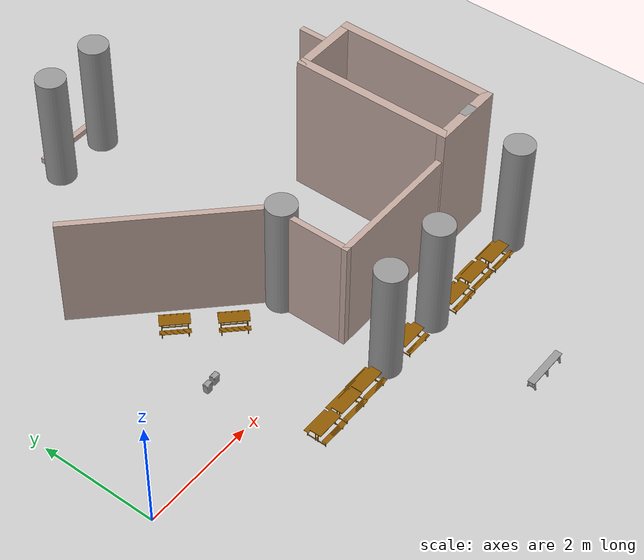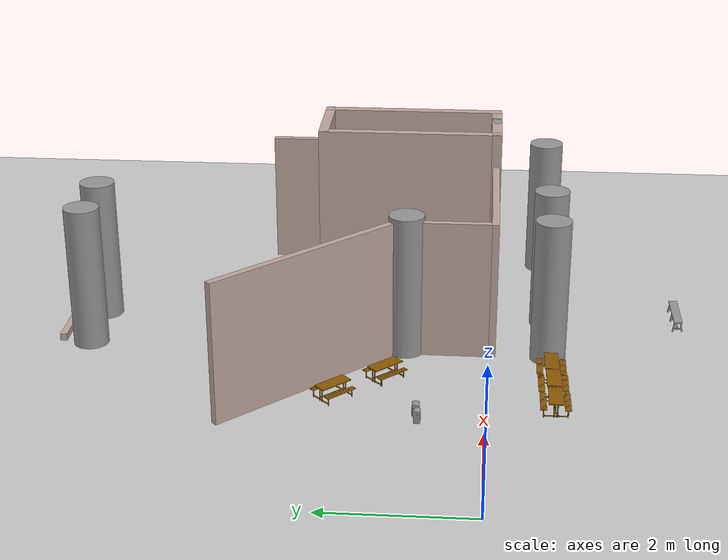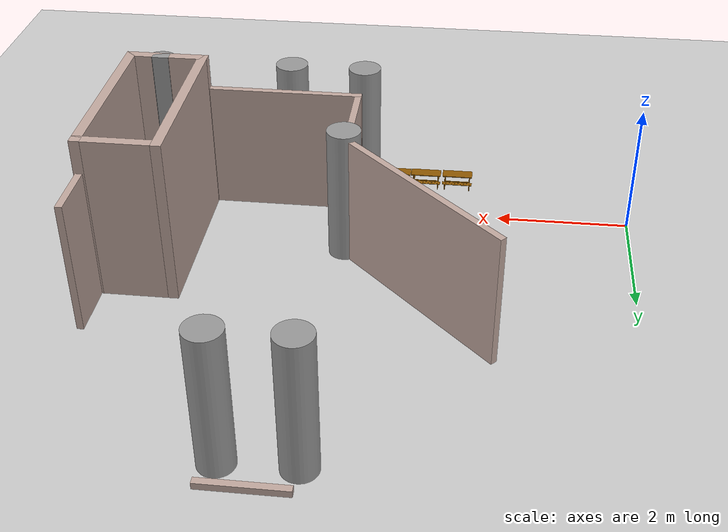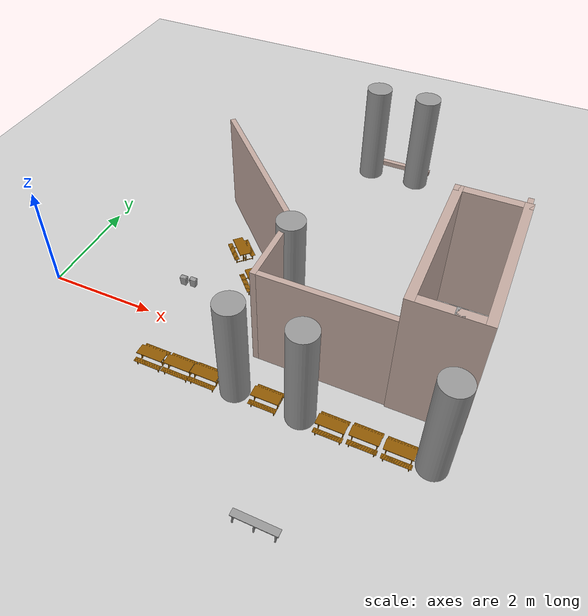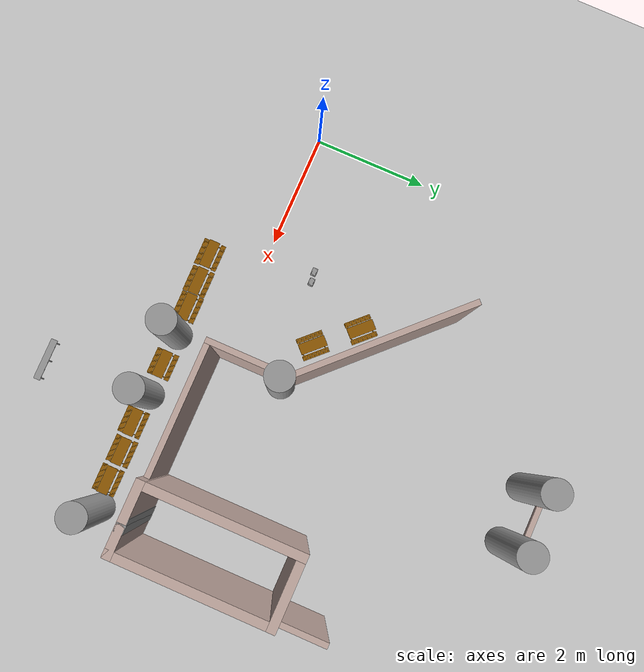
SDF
<sdf version="1.6">
 <world name="default">
  <model name="ground_plane">
   <static>1</static>
   <link name="link">
    <collision name="collision">
     <geometry><plane><normal>0 0 1</normal><size>100 100</size></plane></geometry>
     <surface>
      <contact><collide_bitmask>65535</collide_bitmask></contact>
      <friction><ode><mu>100</mu><mu2>50</mu2></ode></friction>
     </surface>
    </collision>
    <visual name="visual">
     <cast_shadows>0</cast_shadows>
     <geometry><plane><normal>0 0 1</normal><size>100 100</size></plane></geometry>
     <material>
      <script><uri>file://media/materials/scripts/gazebo.material</uri><name>Gazebo/Grey</name></script>
     </material>
    </visual>
   </link>
  </model>
  <model name="gedung_p">
   <pose>2.96636 -2.09069 0 0 -0 0</pose>
   <link name="Wall_137">
    <collision name="Wall_137_Collision">
     <geometry><box><size>3.20031 0.1 2</size></box></geometry>
     <pose>0 0 1 0 -0 0</pose>
    </collision>
    <visual name="Wall_137_Visual">
     <pose>0 0 1 0 -0 0</pose>
     <geometry><box><size>3.20031 0.1 2</size></box></geometry>
     <material>
      <script><uri>file://media/materials/scripts/gazebo.material</uri><name>Gazebo/Grey</name></script>
      <ambient>0.760784 0.662745 0.627451 1</ambient>
     </material>
     <meta><layer>0</layer></meta>
    </visual>
    <pose>0.152488 4.4448 0 0 -0 -0.785398</pose>
   </link>
   <link name="Wall_138">
    <collision name="Wall_138_Collision">
     <geometry><box><size>1.45007 0.1 2</size></box></geometry>
     <pose>0 0 1 0 -0 0</pose>
    </collision>
    <visual name="Wall_138_Visual">
     <pose>0 0 1 0 -0 0</pose>
     <geometry><box><size>1.45007 0.1 2</size></box></geometry>
     <material>
      <script><uri>file://media/materials/scripts/gazebo.material</uri><name>Gazebo/Grey</name></script>
      <ambient>0.760784 0.662745 0.627451 1</ambient>
     </material>
     <meta><layer>0</layer></meta>
    </visual>
    <pose>1.24849 2.67381 0 0 -0 -1.5708</pose>
   </link>
   <link name="Wall_139">
    <collision name="Wall_139_Collision">
     <geometry><box><size>2.45043 0.1 2</size></box></geometry>
     <pose>0 0 1 0 -0 0</pose>
    </collision>
    <visual name="Wall_139_Visual">
     <pose>0 0 1 0 -0 0</pose>
     <geometry><box><size>2.45043 0.1 2</size></box></geometry>
     <material>
      <script><uri>file://media/materials/scripts/gazebo.material</uri><name>Gazebo/Grey</name></script>
      <ambient>0.760784 0.662745 0.627451 1</ambient>
     </material>
     <meta><layer>0</layer></meta>
    </visual>
    <pose>2.42349 1.9988 0 0 -0 0</pose>
   </link>
   <link name="Wall_140">
    <collision name="Wall_140_Collision">
     <geometry><box><size>2.75 0.15 2.5</size></box></geometry>
     <pose>0 0 1.25 0 -0 0</pose>
    </collision>
    <visual name="Wall_140_Visual">
     <pose>0 0 1.25 0 -0 0</pose>
     <geometry><box><size>2.75 0.15 2.5</size></box></geometry>
     <material>
      <script><uri>file://media/materials/scripts/gazebo.material</uri><name>Gazebo/Grey</name></script>
      <ambient>0.760784 0.662745 0.627451 1</ambient>
     </material>
     <meta><layer>0</layer></meta>
    </visual>
    <pose>3.59849 3.29881 0 0 -0 1.5708</pose>
   </link>
   <link name="Wall_141">
    <collision name="Wall_141_Collision">
     <geometry><box><size>1.25 0.15 2.5</size></box></geometry>
     <pose>0 0 1.25 0 -0 0</pose>
    </collision>
    <visual name="Wall_141_Visual">
     <pose>0 0 1.25 0 -0 0</pose>
     <geometry><box><size>1.25 0.15 2.5</size></box></geometry>
     <material>
      <script><uri>file://media/materials/scripts/gazebo.material</uri><name>Gazebo/Grey</name></script>
      <ambient>0.760784 0.662745 0.627451 1</ambient>
     </material>
     <meta><layer>0</layer></meta>
    </visual>
    <pose>4.14849 4.5988 0 0 -0 0</pose>
   </link>
   <link name="Wall_142">
    <collision name="Wall_142_Collision">
     <geometry><box><size>2.75 0.15 2.5</size></box></geometry>
     <pose>0 0 1.25 0 -0 0</pose>
    </collision>
    <visual name="Wall_142_Visual">
     <pose>0 0 1.25 0 -0 0</pose>
     <geometry><box><size>2.75 0.15 2.5</size></box></geometry>
     <material>
      <script><uri>file://media/materials/scripts/gazebo.material</uri><name>Gazebo/Grey</name></script>
      <ambient>0.760784 0.662745 0.627451 1</ambient>
     </material>
     <meta><layer>0</layer></meta>
    </visual>
    <pose>4.69849 3.29881 0 0 -0 -1.5708</pose>
   </link>
   <link name="Wall_143">
    <collision name="Wall_143_Collision">
     <geometry><box><size>1.25 0.15 2.5</size></box></geometry>
     <pose>0 0 1.25 0 -0 0</pose>
    </collision>
    <visual name="Wall_143_Visual">
     <pose>0 0 1.25 0 -0 0</pose>
     <geometry><box><size>1.25 0.15 2.5</size></box></geometry>
     <material>
      <script><uri>file://media/materials/scripts/gazebo.material</uri><name>Gazebo/Grey</name></script>
      <ambient>0.760784 0.662745 0.627451 1</ambient>
     </material>
     <meta><layer>0</layer></meta>
    </visual>
    <pose>4.14849 1.9988 0 0 -0 3.14159</pose>
   </link>
   <link name="Wall_147">
    <collision name="Wall_147_Collision">
     <geometry><box><size>1.2 0.1 0.1</size></box></geometry>
     <pose>0 0 0.05 0 -0 0</pose>
    </collision>
    <visual name="Wall_147_Visual">
     <pose>0 0 0.05 0 -0 0</pose>
     <geometry><box><size>1.2 0.1 0.1</size></box></geometry>
     <material>
      <script><uri>file://media/materials/scripts/gazebo.material</uri><name>Gazebo/Grey</name></script>
      <ambient>0.760784 0.662745 0.627451 1</ambient>
     </material>
     <meta><layer>0</layer></meta>
    </visual>
    <pose>1.87849 8.1548 0 0 -0 0</pose>
   </link>
   <link name="Wall_149">
    <collision name="Wall_149_Collision">
     <geometry><box><size>0.95 0.1 2</size></box></geometry>
     <pose>0 0 1 0 -0 0</pose>
    </collision>
    <visual name="Wall_149_Visual">
     <pose>0 0 1 0 -0 0</pose>
     <geometry><box><size>0.95 0.1 2</size></box></geometry>
     <material>
      <script><uri>file://media/materials/scripts/gazebo.material</uri><name>Gazebo/Grey</name></script>
      <ambient>0.760784 0.662745 0.627451 1</ambient>
     </material>
     <meta><layer>0</layer></meta>
    </visual>
    <pose>4.69849 5.02381 0 0 -0 1.5708</pose>
   </link>
   <link name="Wall_242">
    <collision name="Wall_242_Collision">
     <geometry><box><size>0.15 0.15 2.5</size></box></geometry>
     <pose>0 0 1.25 0 -0 0</pose>
    </collision>
    <visual name="Wall_242_Visual">
     <pose>0 0 1.25 0 -0 0</pose>
     <geometry><box><size>0.15 0.15 2.5</size></box></geometry>
     <material>
      <script><uri>file://media/materials/scripts/gazebo.material</uri><name>Gazebo/Grey</name></script>
      <ambient>1 1 1 1</ambient>
     </material>
     <meta><layer>0</layer></meta>
    </visual>
    <pose>4.28764 2.00954 0 0 -0 0</pose>
   </link>
   <link name="Wall_244">
    <collision name="Wall_244_Collision">
     <geometry><box><size>0.25 0.15 2.5</size></box></geometry>
     <pose>0 0 1.25 0 -0 0</pose>
    </collision>
    <visual name="Wall_244_Visual">
     <pose>0 0 1.25 0 -0 0</pose>
     <geometry><box><size>0.25 0.15 2.5</size></box></geometry>
     <material>
      <script><uri>file://media/materials/scripts/gazebo.material</uri><name>Gazebo/Grey</name></script>
      <ambient>1 1 1 1</ambient>
     </material>
     <meta><layer>0</layer></meta>
    </visual>
    <pose>4.23218 2.00954 0 0 -0 3.14159</pose>
   </link>
   <link name="Wall_260">
    <collision name="Wall_260_Collision">
     <geometry><box><size>0.31516 0.2 2</size></box></geometry>
     <pose>0 0 1 0 -0 0</pose>
    </collision>
    <visual name="Wall_260_Visual">
     <pose>0 0 1 0 -0 0</pose>
     <geometry><box><size>0.31516 0.2 2</size></box></geometry>
     <material>
      <script><uri>file://media/materials/scripts/gazebo.material</uri><name>Gazebo/Grey</name></script>
      <ambient>0.760784 0.662745 0.627451 1</ambient>
     </material>
     <meta><layer>0</layer></meta>
    </visual>
    <pose>4.52349 1.1404 0 0 -0 0.083141</pose>
   </link>
   <link name="Wall_262">
    <collision name="Wall_262_Collision">
     <geometry><box><size>0.267624 0.2 2</size></box></geometry>
     <pose>0 0 1 0 -0 0</pose>
    </collision>
    <visual name="Wall_262_Visual">
     <pose>0 0 1 0 -0 0</pose>
     <geometry><box><size>0.267624 0.2 2</size></box></geometry>
     <material>
      <script><uri>file://media/materials/scripts/gazebo.material</uri><name>Gazebo/Grey</name></script>
      <ambient>0.760784 0.662745 0.627451 1</ambient>
     </material>
     <meta><layer>0</layer></meta>
    </visual>
    <pose>1.27667 1.13083 0 0 -0 0.141897</pose>
   </link>
   <link name="Wall_264">
    <collision name="Wall_264_Collision">
     <geometry><box><size>0.277104 0.2 2</size></box></geometry>
     <pose>0 0 1 0 -0 0</pose>
    </collision>
    <visual name="Wall_264_Visual">
     <pose>0 0 1 0 -0 0</pose>
     <geometry><box><size>0.277104 0.2 2</size></box></geometry>
     <material>
      <script><uri>file://media/materials/scripts/gazebo.material</uri><name>Gazebo/Grey</name></script>
      <ambient>0.760784 0.662745 0.627451 1</ambient>
     </material>
     <meta><layer>0</layer></meta>
    </visual>
    <pose>2.38126 1.12127 0 0 -0 0.124355</pose>
   </link>
   <static>1</static>
  </model>
  <model name="tiang_besar_36">
   <link name="link_0">
    <inertial>
     <mass>1</mass>
     <inertia>
      <ixx>0.166667</ixx>
      <ixy>0</ixy>
      <ixz>0</ixz>
      <iyy>0.166667</iyy>
      <iyz>0</iyz>
      <izz>0.166667</izz>
     </inertia>
    </inertial>
    <pose>0.080543 -0.031124 0 0 -0 0</pose>
    <visual name="visual">
     <geometry>
      <mesh><uri>/home/thardi/Gazebo Objek/cylinder sedang.dae</uri><scale>1 1 1.15</scale></mesh>
     </geometry>
     <material>
      <lighting>1</lighting>
      <script><uri>file://media/materials/scripts/gazebo.material</uri><name>Gazebo/Grey</name></script>
      <shader type="vertex"><normal_map>__default__</normal_map></shader>
      <ambient>0.3 0.3 0.3 1</ambient>
      <diffuse>0.7 0.7 0.7 1</diffuse>
      <specular>0.01 0.01 0.01 1</specular>
      <emissive>0 0 0 1</emissive>
     </material>
    </visual>
    <collision name="collision">
     <geometry>
      <mesh><uri>/home/thardi/Gazebo Objek/cylinder sedang.dae</uri><scale>1 1 1.15</scale></mesh>
     </geometry>
     <surface>
      <friction>
       <ode><mu>1.15</mu><mu2>1</mu2><fdir1>0 0 0</fdir1><slip1>0</slip1><slip2>0</slip2></ode>
       <torsional>
        <coefficient>1</coefficient>
        <patch_radius>0</patch_radius>
        <surface_radius>0</surface_radius>
        <use_patch_radius>1</use_patch_radius>
        <ode><slip>0</slip></ode>
       </torsional>
      </friction>
      <bounce><restitution_coefficient>0</restitution_coefficient><threshold>1e+06</threshold></bounce>
      <contact>
       <collide_without_contact>0</collide_without_contact>
       <collide_without_contact_bitmask>1</collide_without_contact_bitmask>
       <collide_bitmask>1</collide_bitmask>
       <ode>
        <soft_cfm>0</soft_cfm>
        <soft_erp>0.2</soft_erp>
        <kp>1e+13</kp>
        <kd>1</kd>
        <max_vel>0.01</max_vel>
        <min_depth>0</min_depth>
       </ode>
       <bullet>
        <split_impulse>1</split_impulse>
        <split_impulse_penetration_threshold>-0.01</split_impulse_penetration_threshold>
        <soft_cfm>0</soft_cfm>
        <soft_erp>0.2</soft_erp>
        <kp>1e+13</kp>
        <kd>1</kd>
       </bullet>
      </contact>
     </surface>
    </collision>
   </link>
   <static>1</static>
   <pose>4.19679 1.15919 0 0 -0 0</pose>
  </model>
  <model name="tiang_besar_39">
   <link name="link_0">
    <inertial>
     <mass>1</mass>
     <inertia>
      <ixx>0.166667</ixx>
      <ixy>0</ixy>
      <ixz>0</ixz>
      <iyy>0.166667</iyy>
      <iyz>0</iyz>
      <izz>0.166667</izz>
     </inertia>
    </inertial>
    <pose>0.080543 -0.031124 0 0 -0 0</pose>
    <visual name="visual">
     <geometry>
      <mesh><uri>/home/thardi/Gazebo Objek/cylinder sedang.dae</uri><scale>1 1 1.15</scale></mesh>
     </geometry>
     <material>
      <lighting>1</lighting>
      <script><uri>file://media/materials/scripts/gazebo.material</uri><name>Gazebo/Grey</name></script>
      <shader type="vertex"><normal_map>__default__</normal_map></shader>
      <ambient>0.3 0.3 0.3 1</ambient>
      <diffuse>0.7 0.7 0.7 1</diffuse>
      <specular>0.01 0.01 0.01 1</specular>
      <emissive>0 0 0 1</emissive>
     </material>
    </visual>
    <collision name="collision">
     <geometry>
      <mesh><uri>/home/thardi/Gazebo Objek/cylinder sedang.dae</uri><scale>1 1 1.15</scale></mesh>
     </geometry>
     <surface>
      <friction>
       <ode><mu>1.15</mu><mu2>1</mu2><fdir1>0 0 0</fdir1><slip1>0</slip1><slip2>0</slip2></ode>
       <torsional>
        <coefficient>1</coefficient>
        <patch_radius>0</patch_radius>
        <surface_radius>0</surface_radius>
        <use_patch_radius>1</use_patch_radius>
        <ode><slip>0</slip></ode>
       </torsional>
      </friction>
      <bounce><restitution_coefficient>0</restitution_coefficient><threshold>1e+06</threshold></bounce>
      <contact>
       <collide_without_contact>0</collide_without_contact>
       <collide_without_contact_bitmask>1</collide_without_contact_bitmask>
       <collide_bitmask>1</collide_bitmask>
       <ode>
        <soft_cfm>0</soft_cfm>
        <soft_erp>0.2</soft_erp>
        <kp>1e+13</kp>
        <kd>1</kd>
        <max_vel>0.01</max_vel>
        <min_depth>0</min_depth>
       </ode>
       <bullet>
        <split_impulse>1</split_impulse>
        <split_impulse_penetration_threshold>-0.01</split_impulse_penetration_threshold>
        <soft_cfm>0</soft_cfm>
        <soft_erp>0.2</soft_erp>
        <kp>1e+13</kp>
        <kd>1</kd>
       </bullet>
      </contact>
     </surface>
    </collision>
   </link>
   <static>1</static>
   <pose>4.12486 -0.842238 0 0 -0 0</pose>
  </model>
  <model name="tiang_besar_42">
   <link name="link_0">
    <inertial>
     <mass>1</mass>
     <inertia>
      <ixx>0.166667</ixx>
      <ixy>0</ixy>
      <ixz>0</ixz>
      <iyy>0.166667</iyy>
      <iyz>0</iyz>
      <izz>0.166667</izz>
     </inertia>
    </inertial>
    <pose>0.080543 -0.031124 0 0 -0 0</pose>
    <visual name="visual">
     <geometry>
      <mesh><uri>/home/thardi/Gazebo Objek/cylinder sedang.dae</uri><scale>1 1 1.15</scale></mesh>
     </geometry>
     <material>
      <lighting>1</lighting>
      <script><uri>file://media/materials/scripts/gazebo.material</uri><name>Gazebo/Grey</name></script>
      <shader type="vertex"><normal_map>__default__</normal_map></shader>
      <ambient>0.3 0.3 0.3 1</ambient>
      <diffuse>0.7 0.7 0.7 1</diffuse>
      <specular>0.01 0.01 0.01 1</specular>
      <emissive>0 0 0 1</emissive>
     </material>
    </visual>
    <collision name="collision">
     <geometry>
      <mesh><uri>/home/thardi/Gazebo Objek/cylinder sedang.dae</uri><scale>1 1 1.15</scale></mesh>
     </geometry>
     <surface>
      <friction>
       <ode><mu>1.15</mu><mu2>1</mu2><fdir1>0 0 0</fdir1><slip1>0</slip1><slip2>0</slip2></ode>
       <torsional>
        <coefficient>1</coefficient>
        <patch_radius>0</patch_radius>
        <surface_radius>0</surface_radius>
        <use_patch_radius>1</use_patch_radius>
        <ode><slip>0</slip></ode>
       </torsional>
      </friction>
      <bounce><restitution_coefficient>0</restitution_coefficient><threshold>1e+06</threshold></bounce>
      <contact>
       <collide_without_contact>0</collide_without_contact>
       <collide_without_contact_bitmask>1</collide_without_contact_bitmask>
       <collide_bitmask>1</collide_bitmask>
       <ode>
        <soft_cfm>0</soft_cfm>
        <soft_erp>0.2</soft_erp>
        <kp>1e+13</kp>
        <kd>1</kd>
        <max_vel>0.01</max_vel>
        <min_depth>0</min_depth>
       </ode>
       <bullet>
        <split_impulse>1</split_impulse>
        <split_impulse_penetration_threshold>-0.01</split_impulse_penetration_threshold>
        <soft_cfm>0</soft_cfm>
        <soft_erp>0.2</soft_erp>
        <kp>1e+13</kp>
        <kd>1</kd>
       </bullet>
      </contact>
     </surface>
    </collision>
   </link>
   <static>1</static>
   <pose>5.27862 -0.859134 0 0 -0 0</pose>
  </model>
  <model name="tiang_besar_43">
   <link name="link_0">
    <inertial>
     <mass>1</mass>
     <inertia>
      <ixx>0.166667</ixx>
      <ixy>0</ixy>
      <ixz>0</ixz>
      <iyy>0.166667</iyy>
      <iyz>0</iyz>
      <izz>0.166667</izz>
     </inertia>
    </inertial>
    <pose>0.080543 -0.031124 0 0 -0 0</pose>
    <visual name="visual">
     <geometry>
      <mesh><uri>/home/thardi/Gazebo Objek/cylinder sedang.dae</uri><scale>1 1 1.15</scale></mesh>
     </geometry>
     <material>
      <lighting>1</lighting>
      <script><uri>file://media/materials/scripts/gazebo.material</uri><name>Gazebo/Grey</name></script>
      <shader type="vertex"><normal_map>__default__</normal_map></shader>
      <ambient>0.3 0.3 0.3 1</ambient>
      <diffuse>0.7 0.7 0.7 1</diffuse>
      <specular>0.01 0.01 0.01 1</specular>
      <emissive>0 0 0 1</emissive>
     </material>
    </visual>
    <collision name="collision">
     <geometry>
      <mesh><uri>/home/thardi/Gazebo Objek/cylinder sedang.dae</uri><scale>1 1 1.15</scale></mesh>
     </geometry>
     <surface>
      <friction>
       <ode><mu>1.15</mu><mu2>1</mu2><fdir1>0 0 0</fdir1><slip1>0</slip1><slip2>0</slip2></ode>
       <torsional>
        <coefficient>1</coefficient>
        <patch_radius>0</patch_radius>
        <surface_radius>0</surface_radius>
        <use_patch_radius>1</use_patch_radius>
        <ode><slip>0</slip></ode>
       </torsional>
      </friction>
      <bounce><restitution_coefficient>0</restitution_coefficient><threshold>1e+06</threshold></bounce>
      <contact>
       <collide_without_contact>0</collide_without_contact>
       <collide_without_contact_bitmask>1</collide_without_contact_bitmask>
       <collide_bitmask>1</collide_bitmask>
       <ode>
        <soft_cfm>0</soft_cfm>
        <soft_erp>0.2</soft_erp>
        <kp>1e+13</kp>
        <kd>1</kd>
        <max_vel>0.01</max_vel>
        <min_depth>0</min_depth>
       </ode>
       <bullet>
        <split_impulse>1</split_impulse>
        <split_impulse_penetration_threshold>-0.01</split_impulse_penetration_threshold>
        <soft_cfm>0</soft_cfm>
        <soft_erp>0.2</soft_erp>
        <kp>1e+13</kp>
        <kd>1</kd>
       </bullet>
      </contact>
     </surface>
    </collision>
   </link>
   <static>1</static>
   <pose>7.39049 -0.838215 0 0 -0 0</pose>
  </model>
  <model name="tiang_besar_66">
   <link name="link_0">
    <inertial>
     <mass>1</mass>
     <inertia>
      <ixx>0.166667</ixx>
      <ixy>0</ixy>
      <ixz>0</ixz>
      <iyy>0.166667</iyy>
      <iyz>0</iyz>
      <izz>0.166667</izz>
     </inertia>
    </inertial>
    <pose>0.080543 -0.031124 0 0 -0 0</pose>
    <visual name="visual">
     <geometry>
      <mesh><uri>/home/thardi/Gazebo Objek/cylinder sedang.dae</uri><scale>1 1 1.15</scale></mesh>
     </geometry>
     <material>
      <lighting>1</lighting>
      <script><uri>file://media/materials/scripts/gazebo.material</uri><name>Gazebo/Grey</name></script>
      <shader type="vertex"><normal_map>__default__</normal_map></shader>
      <ambient>0.3 0.3 0.3 1</ambient>
      <diffuse>0.7 0.7 0.7 1</diffuse>
      <specular>0.01 0.01 0.01 1</specular>
      <emissive>0 0 0 1</emissive>
     </material>
    </visual>
    <collision name="collision">
     <geometry>
      <mesh><uri>/home/thardi/Gazebo Objek/cylinder sedang.dae</uri><scale>1 1 1.15</scale></mesh>
     </geometry>
     <surface>
      <friction>
       <ode><mu>1.15</mu><mu2>1</mu2><fdir1>0 0 0</fdir1><slip1>0</slip1><slip2>0</slip2></ode>
       <torsional>
        <coefficient>1</coefficient>
        <patch_radius>0</patch_radius>
        <surface_radius>0</surface_radius>
        <use_patch_radius>1</use_patch_radius>
        <ode><slip>0</slip></ode>
       </torsional>
      </friction>
      <bounce><restitution_coefficient>0</restitution_coefficient><threshold>1e+06</threshold></bounce>
      <contact>
       <collide_without_contact>0</collide_without_contact>
       <collide_without_contact_bitmask>1</collide_without_contact_bitmask>
       <collide_bitmask>1</collide_bitmask>
       <ode>
        <soft_cfm>0</soft_cfm>
        <soft_erp>0.2</soft_erp>
        <kp>1e+13</kp>
        <kd>1</kd>
        <max_vel>0.01</max_vel>
        <min_depth>0</min_depth>
       </ode>
       <bullet>
        <split_impulse>1</split_impulse>
        <split_impulse_penetration_threshold>-0.01</split_impulse_penetration_threshold>
        <soft_cfm>0</soft_cfm>
        <soft_erp>0.2</soft_erp>
        <kp>1e+13</kp>
        <kd>1</kd>
       </bullet>
      </contact>
     </surface>
    </collision>
   </link>
   <static>1</static>
   <pose>4.15239 5.68048 0 0 -0 0</pose>
  </model>
  <model name="tiang_besar_67">
   <link name="link_0">
    <inertial>
     <mass>1</mass>
     <inertia>
      <ixx>0.166667</ixx>
      <ixy>0</ixy>
      <ixz>0</ixz>
      <iyy>0.166667</iyy>
      <iyz>0</iyz>
      <izz>0.166667</izz>
     </inertia>
    </inertial>
    <pose>0.080543 -0.031124 0 0 -0 0</pose>
    <visual name="visual">
     <geometry>
      <mesh><uri>/home/thardi/Gazebo Objek/cylinder sedang.dae</uri><scale>1 1 1.15</scale></mesh>
     </geometry>
     <material>
      <lighting>1</lighting>
      <script><uri>file://media/materials/scripts/gazebo.material</uri><name>Gazebo/Grey</name></script>
      <shader type="vertex"><normal_map>__default__</normal_map></shader>
      <ambient>0.3 0.3 0.3 1</ambient>
      <diffuse>0.7 0.7 0.7 1</diffuse>
      <specular>0.01 0.01 0.01 1</specular>
      <emissive>0 0 0 1</emissive>
     </material>
    </visual>
    <collision name="collision">
     <geometry>
      <mesh><uri>/home/thardi/Gazebo Objek/cylinder sedang.dae</uri><scale>1 1 1.15</scale></mesh>
     </geometry>
     <surface>
      <friction>
       <ode><mu>1.15</mu><mu2>1</mu2><fdir1>0 0 0</fdir1><slip1>0</slip1><slip2>0</slip2></ode>
       <torsional>
        <coefficient>1</coefficient>
        <patch_radius>0</patch_radius>
        <surface_radius>0</surface_radius>
        <use_patch_radius>1</use_patch_radius>
        <ode><slip>0</slip></ode>
       </torsional>
      </friction>
      <bounce><restitution_coefficient>0</restitution_coefficient><threshold>1e+06</threshold></bounce>
      <contact>
       <collide_without_contact>0</collide_without_contact>
       <collide_without_contact_bitmask>1</collide_without_contact_bitmask>
       <collide_bitmask>1</collide_bitmask>
       <ode>
        <soft_cfm>0</soft_cfm>
        <soft_erp>0.2</soft_erp>
        <kp>1e+13</kp>
        <kd>1</kd>
        <max_vel>0.01</max_vel>
        <min_depth>0</min_depth>
       </ode>
       <bullet>
        <split_impulse>1</split_impulse>
        <split_impulse_penetration_threshold>-0.01</split_impulse_penetration_threshold>
        <soft_cfm>0</soft_cfm>
        <soft_erp>0.2</soft_erp>
        <kp>1e+13</kp>
        <kd>1</kd>
       </bullet>
      </contact>
     </surface>
    </collision>
   </link>
   <static>1</static>
   <pose>5.15822 5.7031 0 0 -0 0</pose>
  </model>
  <model name="tong_sampah_4">
   <link name="link_13">
    <inertial>
     <mass>1</mass>
     <inertia>
      <ixx>0.166667</ixx>
      <ixy>0</ixy>
      <ixz>0</ixz>
      <iyy>0.166667</iyy>
      <iyz>0</iyz>
      <izz>0.166667</izz>
     </inertia>
    </inertial>
    <visual name="visual">
     <geometry>
      <mesh><uri>/home/thardi/Gazebo Objek/tong sampah.dae</uri><scale>0.05 0.05 0.05</scale></mesh>
     </geometry>
     <material>
      <lighting>1</lighting>
      <script><uri>file://media/materials/scripts/gazebo.material</uri><name>Gazebo/Grey</name></script>
      <shader type="vertex"><normal_map>__default__</normal_map></shader>
      <ambient>0.3 0.3 0.3 1</ambient>
      <diffuse>0.7 0.7 0.7 1</diffuse>
      <specular>0.01 0.01 0.01 1</specular>
      <emissive>0 0 0 1</emissive>
     </material>
    </visual>
    <collision name="collision">
     <geometry>
      <mesh><uri>/home/thardi/Gazebo Objek/tong sampah.dae</uri><scale>0.05 0.05 0.05</scale></mesh>
     </geometry>
     <surface>
      <friction>
       <ode><mu>1</mu><mu2>1</mu2><fdir1>0 0 0</fdir1><slip1>0</slip1><slip2>0</slip2></ode>
       <torsional>
        <coefficient>1</coefficient>
        <patch_radius>0</patch_radius>
        <surface_radius>0</surface_radius>
        <use_patch_radius>1</use_patch_radius>
        <ode><slip>0</slip></ode>
       </torsional>
      </friction>
      <bounce><restitution_coefficient>0</restitution_coefficient><threshold>1e+06</threshold></bounce>
      <contact>
       <collide_without_contact>0</collide_without_contact>
       <collide_without_contact_bitmask>1</collide_without_contact_bitmask>
       <collide_bitmask>1</collide_bitmask>
       <ode>
        <soft_cfm>0</soft_cfm>
        <soft_erp>0.2</soft_erp>
        <kp>1e+13</kp>
        <kd>1</kd>
        <max_vel>0.01</max_vel>
        <min_depth>0</min_depth>
       </ode>
       <bullet>
        <split_impulse>1</split_impulse>
        <split_impulse_penetration_threshold>-0.01</split_impulse_penetration_threshold>
        <soft_cfm>0</soft_cfm>
        <soft_erp>0.2</soft_erp>
        <kp>1e+13</kp>
        <kd>1</kd>
       </bullet>
      </contact>
     </surface>
    </collision>
   </link>
   <static>1</static>
   <pose>2.16256 0.822827 0 0 -0 0</pose>
  </model>
  <model name="tong_sampah_5">
   <link name="link_13">
    <inertial>
     <mass>1</mass>
     <inertia>
      <ixx>0.166667</ixx>
      <ixy>0</ixy>
      <ixz>0</ixz>
      <iyy>0.166667</iyy>
      <iyz>0</iyz>
      <izz>0.166667</izz>
     </inertia>
    </inertial>
    <visual name="visual">
     <geometry>
      <mesh><uri>/home/thardi/Gazebo Objek/tong sampah.dae</uri><scale>0.05 0.05 0.05</scale></mesh>
     </geometry>
     <material>
      <lighting>1</lighting>
      <script><uri>file://media/materials/scripts/gazebo.material</uri><name>Gazebo/Grey</name></script>
      <shader type="vertex"><normal_map>__default__</normal_map></shader>
      <ambient>0.3 0.3 0.3 1</ambient>
      <diffuse>0.7 0.7 0.7 1</diffuse>
      <specular>0.01 0.01 0.01 1</specular>
      <emissive>0 0 0 1</emissive>
     </material>
    </visual>
    <collision name="collision">
     <geometry>
      <mesh><uri>/home/thardi/Gazebo Objek/tong sampah.dae</uri><scale>0.05 0.05 0.05</scale></mesh>
     </geometry>
     <surface>
      <friction>
       <ode><mu>1</mu><mu2>1</mu2><fdir1>0 0 0</fdir1><slip1>0</slip1><slip2>0</slip2></ode>
       <torsional>
        <coefficient>1</coefficient>
        <patch_radius>0</patch_radius>
        <surface_radius>0</surface_radius>
        <use_patch_radius>1</use_patch_radius>
        <ode><slip>0</slip></ode>
       </torsional>
      </friction>
      <bounce><restitution_coefficient>0</restitution_coefficient><threshold>1e+06</threshold></bounce>
      <contact>
       <collide_without_contact>0</collide_without_contact>
       <collide_without_contact_bitmask>1</collide_without_contact_bitmask>
       <collide_bitmask>1</collide_bitmask>
       <ode>
        <soft_cfm>0</soft_cfm>
        <soft_erp>0.2</soft_erp>
        <kp>1e+13</kp>
        <kd>1</kd>
        <max_vel>0.01</max_vel>
        <min_depth>0</min_depth>
       </ode>
       <bullet>
        <split_impulse>1</split_impulse>
        <split_impulse_penetration_threshold>-0.01</split_impulse_penetration_threshold>
        <soft_cfm>0</soft_cfm>
        <soft_erp>0.2</soft_erp>
        <kp>1e+13</kp>
        <kd>1</kd>
       </bullet>
      </contact>
     </surface>
    </collision>
   </link>
   <static>1</static>
   <pose>2.34661 0.848103 0 0 -0 0</pose>
  </model>
  <model name="kursi_piknik_clone">
   <link name="link_2">
    <inertial>
     <mass>1</mass>
     <inertia>
      <ixx>0.166667</ixx>
      <ixy>0</ixy>
      <ixz>0</ixz>
      <iyy>0.166667</iyy>
      <iyz>0</iyz>
      <izz>0.166667</izz>
     </inertia>
    </inertial>
    <visual name="visual">
     <geometry>
      <mesh><uri>/home/thardi/Gazebo Objek/kursi piknik.dae</uri><scale>0.2 0.2 0.2</scale></mesh>
     </geometry>
     <material>
      <lighting>1</lighting>
      <script><uri>file://media/materials/scripts/gazebo.material</uri><name>Gazebo/Grey</name></script>
      <shader type="vertex"><normal_map>__default__</normal_map></shader>
      <ambient>0.561 0.349 0.008 1</ambient>
      <diffuse>0.561 0.349 0.008 1</diffuse>
      <specular>0.561 0.349 0.008 1</specular>
      <emissive>0.561 0.349 0.008 1</emissive>
     </material>
    </visual>
    <collision name="collision">
     <geometry>
      <mesh><uri>/home/thardi/Gazebo Objek/kursi piknik.dae</uri><scale>0.2 0.2 0.2</scale></mesh>
     </geometry>
     <surface>
      <friction>
       <ode><mu>1</mu><mu2>1</mu2><fdir1>0 0 0</fdir1><slip1>0</slip1><slip2>0</slip2></ode>
       <torsional>
        <coefficient>1</coefficient>
        <patch_radius>0</patch_radius>
        <surface_radius>0</surface_radius>
        <use_patch_radius>1</use_patch_radius>
        <ode><slip>0</slip></ode>
       </torsional>
      </friction>
      <bounce><restitution_coefficient>0</restitution_coefficient><threshold>1e+06</threshold></bounce>
      <contact>
       <collide_without_contact>0</collide_without_contact>
       <collide_without_contact_bitmask>1</collide_without_contact_bitmask>
       <collide_bitmask>1</collide_bitmask>
       <ode>
        <soft_cfm>0</soft_cfm>
        <soft_erp>0.2</soft_erp>
        <kp>1e+13</kp>
        <kd>1</kd>
        <max_vel>0.01</max_vel>
        <min_depth>0</min_depth>
       </ode>
       <bullet>
        <split_impulse>1</split_impulse>
        <split_impulse_penetration_threshold>-0.01</split_impulse_penetration_threshold>
        <soft_cfm>0</soft_cfm>
        <soft_erp>0.2</soft_erp>
        <kp>1e+13</kp>
        <kd>1</kd>
       </bullet>
      </contact>
     </surface>
    </collision>
   </link>
   <static>1</static>
   <pose>2.83809 2.02422 0 0 0 -0.797438</pose>
  </model>
  <model name="kursi_piknik_clone_0">
   <link name="link_2">
    <inertial>
     <mass>1</mass>
     <inertia>
      <ixx>0.166667</ixx>
      <ixy>0</ixy>
      <ixz>0</ixz>
      <iyy>0.166667</iyy>
      <iyz>0</iyz>
      <izz>0.166667</izz>
     </inertia>
    </inertial>
    <visual name="visual">
     <geometry>
      <mesh><uri>/home/thardi/Gazebo Objek/kursi piknik.dae</uri><scale>0.2 0.2 0.2</scale></mesh>
     </geometry>
     <material>
      <lighting>1</lighting>
      <script><uri>file://media/materials/scripts/gazebo.material</uri><name>Gazebo/Grey</name></script>
      <shader type="vertex"><normal_map>__default__</normal_map></shader>
      <ambient>0.561 0.349 0.008 1</ambient>
      <diffuse>0.561 0.349 0.008 1</diffuse>
      <specular>0.561 0.349 0.008 1</specular>
      <emissive>0.561 0.349 0.008 1</emissive>
     </material>
    </visual>
    <collision name="collision">
     <geometry>
      <mesh><uri>/home/thardi/Gazebo Objek/kursi piknik.dae</uri><scale>0.2 0.2 0.2</scale></mesh>
     </geometry>
     <surface>
      <friction>
       <ode><mu>1</mu><mu2>1</mu2><fdir1>0 0 0</fdir1><slip1>0</slip1><slip2>0</slip2></ode>
       <torsional>
        <coefficient>1</coefficient>
        <patch_radius>0</patch_radius>
        <surface_radius>0</surface_radius>
        <use_patch_radius>1</use_patch_radius>
        <ode><slip>0</slip></ode>
       </torsional>
      </friction>
      <bounce><restitution_coefficient>0</restitution_coefficient><threshold>1e+06</threshold></bounce>
      <contact>
       <collide_without_contact>0</collide_without_contact>
       <collide_without_contact_bitmask>1</collide_without_contact_bitmask>
       <collide_bitmask>1</collide_bitmask>
       <ode>
        <soft_cfm>0</soft_cfm>
        <soft_erp>0.2</soft_erp>
        <kp>1e+13</kp>
        <kd>1</kd>
        <max_vel>0.01</max_vel>
        <min_depth>0</min_depth>
       </ode>
       <bullet>
        <split_impulse>1</split_impulse>
        <split_impulse_penetration_threshold>-0.01</split_impulse_penetration_threshold>
        <soft_cfm>0</soft_cfm>
        <soft_erp>0.2</soft_erp>
        <kp>1e+13</kp>
        <kd>1</kd>
       </bullet>
      </contact>
     </surface>
    </collision>
   </link>
   <static>1</static>
   <pose>3.43188 1.36462 0 0 0 -0.797438</pose>
  </model>
  <model name="kursi_piknik_0">
   <link name="link_2">
    <inertial>
     <mass>1</mass>
     <inertia>
      <ixx>0.166667</ixx>
      <ixy>0</ixy>
      <ixz>0</ixz>
      <iyy>0.166667</iyy>
      <iyz>0</iyz>
      <izz>0.166667</izz>
     </inertia>
    </inertial>
    <visual name="visual">
     <geometry>
      <mesh><uri>/home/thardi/Gazebo Objek/kursi piknik.dae</uri><scale>0.2 0.2 0.2</scale></mesh>
     </geometry>
     <material>
      <lighting>1</lighting>
      <script><uri>file://media/materials/scripts/gazebo.material</uri><name>Gazebo/Grey</name></script>
      <shader type="vertex"><normal_map>__default__</normal_map></shader>
      <ambient>0.561 0.349 0.008 1</ambient>
      <diffuse>0.561 0.349 0.008 1</diffuse>
      <specular>0.561 0.349 0.008 1</specular>
      <emissive>0.561 0.349 0.008 1</emissive>
     </material>
    </visual>
    <collision name="collision">
     <geometry>
      <mesh><uri>/home/thardi/Gazebo Objek/kursi piknik.dae</uri><scale>0.2 0.2 0.2</scale></mesh>
     </geometry>
     <surface>
      <friction>
       <ode><mu>1</mu><mu2>1</mu2><fdir1>0 0 0</fdir1><slip1>0</slip1><slip2>0</slip2></ode>
       <torsional>
        <coefficient>1</coefficient>
        <patch_radius>0</patch_radius>
        <surface_radius>0</surface_radius>
        <use_patch_radius>1</use_patch_radius>
        <ode><slip>0</slip></ode>
       </torsional>
      </friction>
      <bounce><restitution_coefficient>0</restitution_coefficient><threshold>1e+06</threshold></bounce>
      <contact>
       <collide_without_contact>0</collide_without_contact>
       <collide_without_contact_bitmask>1</collide_without_contact_bitmask>
       <collide_bitmask>1</collide_bitmask>
       <ode>
        <soft_cfm>0</soft_cfm>
        <soft_erp>0.2</soft_erp>
        <kp>1e+13</kp>
        <kd>1</kd>
        <max_vel>0.01</max_vel>
        <min_depth>0</min_depth>
       </ode>
       <bullet>
        <split_impulse>1</split_impulse>
        <split_impulse_penetration_threshold>-0.01</split_impulse_penetration_threshold>
        <soft_cfm>0</soft_cfm>
        <soft_erp>0.2</soft_erp>
        <kp>1e+13</kp>
        <kd>1</kd>
       </bullet>
      </contact>
     </surface>
    </collision>
   </link>
   <static>1</static>
   <pose>2.68522 -0.9296 0 0 -0 0</pose>
  </model>
  <model name="kursi_piknik_1">
   <link name="link_2">
    <inertial>
     <mass>1</mass>
     <inertia>
      <ixx>0.166667</ixx>
      <ixy>0</ixy>
      <ixz>0</ixz>
      <iyy>0.166667</iyy>
      <iyz>0</iyz>
      <izz>0.166667</izz>
     </inertia>
    </inertial>
    <visual name="visual">
     <geometry>
      <mesh><uri>/home/thardi/Gazebo Objek/kursi piknik.dae</uri><scale>0.2 0.2 0.2</scale></mesh>
     </geometry>
     <material>
      <lighting>1</lighting>
      <script><uri>file://media/materials/scripts/gazebo.material</uri><name>Gazebo/Grey</name></script>
      <shader type="vertex"><normal_map>__default__</normal_map></shader>
      <ambient>0.561 0.349 0.008 1</ambient>
      <diffuse>0.561 0.349 0.008 1</diffuse>
      <specular>0.561 0.349 0.008 1</specular>
      <emissive>0.561 0.349 0.008 1</emissive>
     </material>
    </visual>
    <collision name="collision">
     <geometry>
      <mesh><uri>/home/thardi/Gazebo Objek/kursi piknik.dae</uri><scale>0.2 0.2 0.2</scale></mesh>
     </geometry>
     <surface>
      <friction>
       <ode><mu>1</mu><mu2>1</mu2><fdir1>0 0 0</fdir1><slip1>0</slip1><slip2>0</slip2></ode>
       <torsional>
        <coefficient>1</coefficient>
        <patch_radius>0</patch_radius>
        <surface_radius>0</surface_radius>
        <use_patch_radius>1</use_patch_radius>
        <ode><slip>0</slip></ode>
       </torsional>
      </friction>
      <bounce><restitution_coefficient>0</restitution_coefficient><threshold>1e+06</threshold></bounce>
      <contact>
       <collide_without_contact>0</collide_without_contact>
       <collide_without_contact_bitmask>1</collide_without_contact_bitmask>
       <collide_bitmask>1</collide_bitmask>
       <ode>
        <soft_cfm>0</soft_cfm>
        <soft_erp>0.2</soft_erp>
        <kp>1e+13</kp>
        <kd>1</kd>
        <max_vel>0.01</max_vel>
        <min_depth>0</min_depth>
       </ode>
       <bullet>
        <split_impulse>1</split_impulse>
        <split_impulse_penetration_threshold>-0.01</split_impulse_penetration_threshold>
        <soft_cfm>0</soft_cfm>
        <soft_erp>0.2</soft_erp>
        <kp>1e+13</kp>
        <kd>1</kd>
       </bullet>
      </contact>
     </surface>
    </collision>
   </link>
   <static>1</static>
   <pose>3.20038 -0.919117 0 0 -0 0</pose>
  </model>
  <model name="kursi_piknik_2">
   <link name="link_2">
    <inertial>
     <mass>1</mass>
     <inertia>
      <ixx>0.166667</ixx>
      <ixy>0</ixy>
      <ixz>0</ixz>
      <iyy>0.166667</iyy>
      <iyz>0</iyz>
      <izz>0.166667</izz>
     </inertia>
    </inertial>
    <visual name="visual">
     <geometry>
      <mesh><uri>/home/thardi/Gazebo Objek/kursi piknik.dae</uri><scale>0.2 0.2 0.2</scale></mesh>
     </geometry>
     <material>
      <lighting>1</lighting>
      <script><uri>file://media/materials/scripts/gazebo.material</uri><name>Gazebo/Grey</name></script>
      <shader type="vertex"><normal_map>__default__</normal_map></shader>
      <ambient>0.561 0.349 0.008 1</ambient>
      <diffuse>0.561 0.349 0.008 1</diffuse>
      <specular>0.561 0.349 0.008 1</specular>
      <emissive>0.561 0.349 0.008 1</emissive>
     </material>
    </visual>
    <collision name="collision">
     <geometry>
      <mesh><uri>/home/thardi/Gazebo Objek/kursi piknik.dae</uri><scale>0.2 0.2 0.2</scale></mesh>
     </geometry>
     <surface>
      <friction>
       <ode><mu>1</mu><mu2>1</mu2><fdir1>0 0 0</fdir1><slip1>0</slip1><slip2>0</slip2></ode>
       <torsional>
        <coefficient>1</coefficient>
        <patch_radius>0</patch_radius>
        <surface_radius>0</surface_radius>
        <use_patch_radius>1</use_patch_radius>
        <ode><slip>0</slip></ode>
       </torsional>
      </friction>
      <bounce><restitution_coefficient>0</restitution_coefficient><threshold>1e+06</threshold></bounce>
      <contact>
       <collide_without_contact>0</collide_without_contact>
       <collide_without_contact_bitmask>1</collide_without_contact_bitmask>
       <collide_bitmask>1</collide_bitmask>
       <ode>
        <soft_cfm>0</soft_cfm>
        <soft_erp>0.2</soft_erp>
        <kp>1e+13</kp>
        <kd>1</kd>
        <max_vel>0.01</max_vel>
        <min_depth>0</min_depth>
       </ode>
       <bullet>
        <split_impulse>1</split_impulse>
        <split_impulse_penetration_threshold>-0.01</split_impulse_penetration_threshold>
        <soft_cfm>0</soft_cfm>
        <soft_erp>0.2</soft_erp>
        <kp>1e+13</kp>
        <kd>1</kd>
       </bullet>
      </contact>
     </surface>
    </collision>
   </link>
   <static>1</static>
   <pose>3.69084 -0.907477 0 0 -0 0</pose>
  </model>
  <model name="kursi_piknik_3">
   <link name="link_2">
    <inertial>
     <mass>1</mass>
     <inertia>
      <ixx>0.166667</ixx>
      <ixy>0</ixy>
      <ixz>0</ixz>
      <iyy>0.166667</iyy>
      <iyz>0</iyz>
      <izz>0.166667</izz>
     </inertia>
    </inertial>
    <visual name="visual">
     <geometry>
      <mesh><uri>/home/thardi/Gazebo Objek/kursi piknik.dae</uri><scale>0.2 0.2 0.2</scale></mesh>
     </geometry>
     <material>
      <lighting>1</lighting>
      <script><uri>file://media/materials/scripts/gazebo.material</uri><name>Gazebo/Grey</name></script>
      <shader type="vertex"><normal_map>__default__</normal_map></shader>
      <ambient>0.561 0.349 0.008 1</ambient>
      <diffuse>0.561 0.349 0.008 1</diffuse>
      <specular>0.561 0.349 0.008 1</specular>
      <emissive>0.561 0.349 0.008 1</emissive>
     </material>
    </visual>
    <collision name="collision">
     <geometry>
      <mesh><uri>/home/thardi/Gazebo Objek/kursi piknik.dae</uri><scale>0.2 0.2 0.2</scale></mesh>
     </geometry>
     <surface>
      <friction>
       <ode><mu>1</mu><mu2>1</mu2><fdir1>0 0 0</fdir1><slip1>0</slip1><slip2>0</slip2></ode>
       <torsional>
        <coefficient>1</coefficient>
        <patch_radius>0</patch_radius>
        <surface_radius>0</surface_radius>
        <use_patch_radius>1</use_patch_radius>
        <ode><slip>0</slip></ode>
       </torsional>
      </friction>
      <bounce><restitution_coefficient>0</restitution_coefficient><threshold>1e+06</threshold></bounce>
      <contact>
       <collide_without_contact>0</collide_without_contact>
       <collide_without_contact_bitmask>1</collide_without_contact_bitmask>
       <collide_bitmask>1</collide_bitmask>
       <ode>
        <soft_cfm>0</soft_cfm>
        <soft_erp>0.2</soft_erp>
        <kp>1e+13</kp>
        <kd>1</kd>
        <max_vel>0.01</max_vel>
        <min_depth>0</min_depth>
       </ode>
       <bullet>
        <split_impulse>1</split_impulse>
        <split_impulse_penetration_threshold>-0.01</split_impulse_penetration_threshold>
        <soft_cfm>0</soft_cfm>
        <soft_erp>0.2</soft_erp>
        <kp>1e+13</kp>
        <kd>1</kd>
       </bullet>
      </contact>
     </surface>
    </collision>
   </link>
   <static>1</static>
   <pose>4.77768 -0.891952 0 0 -0 0</pose>
  </model>
  <model name="kursi_piknik_4">
   <link name="link_2">
    <inertial>
     <mass>1</mass>
     <inertia>
      <ixx>0.166667</ixx>
      <ixy>0</ixy>
      <ixz>0</ixz>
      <iyy>0.166667</iyy>
      <iyz>0</iyz>
      <izz>0.166667</izz>
     </inertia>
    </inertial>
    <visual name="visual">
     <geometry>
      <mesh><uri>/home/thardi/Gazebo Objek/kursi piknik.dae</uri><scale>0.2 0.2 0.2</scale></mesh>
     </geometry>
     <material>
      <lighting>1</lighting>
      <script><uri>file://media/materials/scripts/gazebo.material</uri><name>Gazebo/Grey</name></script>
      <shader type="vertex"><normal_map>__default__</normal_map></shader>
      <ambient>0.561 0.349 0.008 1</ambient>
      <diffuse>0.561 0.349 0.008 1</diffuse>
      <specular>0.561 0.349 0.008 1</specular>
      <emissive>0.561 0.349 0.008 1</emissive>
     </material>
    </visual>
    <collision name="collision">
     <geometry>
      <mesh><uri>/home/thardi/Gazebo Objek/kursi piknik.dae</uri><scale>0.2 0.2 0.2</scale></mesh>
     </geometry>
     <surface>
      <friction>
       <ode><mu>1</mu><mu2>1</mu2><fdir1>0 0 0</fdir1><slip1>0</slip1><slip2>0</slip2></ode>
       <torsional>
        <coefficient>1</coefficient>
        <patch_radius>0</patch_radius>
        <surface_radius>0</surface_radius>
        <use_patch_radius>1</use_patch_radius>
        <ode><slip>0</slip></ode>
       </torsional>
      </friction>
      <bounce><restitution_coefficient>0</restitution_coefficient><threshold>1e+06</threshold></bounce>
      <contact>
       <collide_without_contact>0</collide_without_contact>
       <collide_without_contact_bitmask>1</collide_without_contact_bitmask>
       <collide_bitmask>1</collide_bitmask>
       <ode>
        <soft_cfm>0</soft_cfm>
        <soft_erp>0.2</soft_erp>
        <kp>1e+13</kp>
        <kd>1</kd>
        <max_vel>0.01</max_vel>
        <min_depth>0</min_depth>
       </ode>
       <bullet>
        <split_impulse>1</split_impulse>
        <split_impulse_penetration_threshold>-0.01</split_impulse_penetration_threshold>
        <soft_cfm>0</soft_cfm>
        <soft_erp>0.2</soft_erp>
        <kp>1e+13</kp>
        <kd>1</kd>
       </bullet>
      </contact>
     </surface>
    </collision>
   </link>
   <static>1</static>
   <pose>5.89842 -0.942442 0 0 -0 0</pose>
  </model>
  <model name="kursi_piknik_5">
   <link name="link_2">
    <inertial>
     <mass>1</mass>
     <inertia>
      <ixx>0.166667</ixx>
      <ixy>0</ixy>
      <ixz>0</ixz>
      <iyy>0.166667</iyy>
      <iyz>0</iyz>
      <izz>0.166667</izz>
     </inertia>
    </inertial>
    <visual name="visual">
     <geometry>
      <mesh><uri>/home/thardi/Gazebo Objek/kursi piknik.dae</uri><scale>0.2 0.2 0.2</scale></mesh>
     </geometry>
     <material>
      <lighting>1</lighting>
      <script><uri>file://media/materials/scripts/gazebo.material</uri><name>Gazebo/Grey</name></script>
      <shader type="vertex"><normal_map>__default__</normal_map></shader>
      <ambient>0.561 0.349 0.008 1</ambient>
      <diffuse>0.561 0.349 0.008 1</diffuse>
      <specular>0.561 0.349 0.008 1</specular>
      <emissive>0.561 0.349 0.008 1</emissive>
     </material>
    </visual>
    <collision name="collision">
     <geometry>
      <mesh><uri>/home/thardi/Gazebo Objek/kursi piknik.dae</uri><scale>0.2 0.2 0.2</scale></mesh>
     </geometry>
     <surface>
      <friction>
       <ode><mu>1</mu><mu2>1</mu2><fdir1>0 0 0</fdir1><slip1>0</slip1><slip2>0</slip2></ode>
       <torsional>
        <coefficient>1</coefficient>
        <patch_radius>0</patch_radius>
        <surface_radius>0</surface_radius>
        <use_patch_radius>1</use_patch_radius>
        <ode><slip>0</slip></ode>
       </torsional>
      </friction>
      <bounce><restitution_coefficient>0</restitution_coefficient><threshold>1e+06</threshold></bounce>
      <contact>
       <collide_without_contact>0</collide_without_contact>
       <collide_without_contact_bitmask>1</collide_without_contact_bitmask>
       <collide_bitmask>1</collide_bitmask>
       <ode>
        <soft_cfm>0</soft_cfm>
        <soft_erp>0.2</soft_erp>
        <kp>1e+13</kp>
        <kd>1</kd>
        <max_vel>0.01</max_vel>
        <min_depth>0</min_depth>
       </ode>
       <bullet>
        <split_impulse>1</split_impulse>
        <split_impulse_penetration_threshold>-0.01</split_impulse_penetration_threshold>
        <soft_cfm>0</soft_cfm>
        <soft_erp>0.2</soft_erp>
        <kp>1e+13</kp>
        <kd>1</kd>
       </bullet>
      </contact>
     </surface>
    </collision>
   </link>
   <static>1</static>
   <pose>6.43733 -0.919368 0 0 -0 0</pose>
  </model>
  <model name="kursi_piknik_6">
   <link name="link_2">
    <inertial>
     <mass>1</mass>
     <inertia>
      <ixx>0.166667</ixx>
      <ixy>0</ixy>
      <ixz>0</ixz>
      <iyy>0.166667</iyy>
      <iyz>0</iyz>
      <izz>0.166667</izz>
     </inertia>
    </inertial>
    <visual name="visual">
     <geometry>
      <mesh><uri>/home/thardi/Gazebo Objek/kursi piknik.dae</uri><scale>0.2 0.2 0.2</scale></mesh>
     </geometry>
     <material>
      <lighting>1</lighting>
      <script><uri>file://media/materials/scripts/gazebo.material</uri><name>Gazebo/Grey</name></script>
      <shader type="vertex"><normal_map>__default__</normal_map></shader>
      <ambient>0.561 0.349 0.008 1</ambient>
      <diffuse>0.561 0.349 0.008 1</diffuse>
      <specular>0.561 0.349 0.008 1</specular>
      <emissive>0.561 0.349 0.008 1</emissive>
     </material>
    </visual>
    <collision name="collision">
     <geometry>
      <mesh><uri>/home/thardi/Gazebo Objek/kursi piknik.dae</uri><scale>0.2 0.2 0.2</scale></mesh>
     </geometry>
     <surface>
      <friction>
       <ode><mu>1</mu><mu2>1</mu2><fdir1>0 0 0</fdir1><slip1>0</slip1><slip2>0</slip2></ode>
       <torsional>
        <coefficient>1</coefficient>
        <patch_radius>0</patch_radius>
        <surface_radius>0</surface_radius>
        <use_patch_radius>1</use_patch_radius>
        <ode><slip>0</slip></ode>
       </torsional>
      </friction>
      <bounce><restitution_coefficient>0</restitution_coefficient><threshold>1e+06</threshold></bounce>
      <contact>
       <collide_without_contact>0</collide_without_contact>
       <collide_without_contact_bitmask>1</collide_without_contact_bitmask>
       <collide_bitmask>1</collide_bitmask>
       <ode>
        <soft_cfm>0</soft_cfm>
        <soft_erp>0.2</soft_erp>
        <kp>1e+13</kp>
        <kd>1</kd>
        <max_vel>0.01</max_vel>
        <min_depth>0</min_depth>
       </ode>
       <bullet>
        <split_impulse>1</split_impulse>
        <split_impulse_penetration_threshold>-0.01</split_impulse_penetration_threshold>
        <soft_cfm>0</soft_cfm>
        <soft_erp>0.2</soft_erp>
        <kp>1e+13</kp>
        <kd>1</kd>
       </bullet>
      </contact>
     </surface>
    </collision>
   </link>
   <static>1</static>
   <pose>6.98061 -0.930264 0 0 -0 0</pose>
  </model>
  <model name="kursi_putih_9">
   <link name="link_3">
    <inertial>
     <mass>1</mass>
     <inertia>
      <ixx>0.166667</ixx>
      <ixy>0</ixy>
      <ixz>0</ixz>
      <iyy>0.166667</iyy>
      <iyz>0</iyz>
      <izz>0.166667</izz>
     </inertia>
    </inertial>
    <visual name="visual">
     <geometry>
      <mesh><uri>/home/thardi/Gazebo Objek/kursi putih.dae</uri><scale>0.15 0.15 0.15</scale></mesh>
     </geometry>
     <material>
      <lighting>1</lighting>
      <script><uri>file://media/materials/scripts/gazebo.material</uri><name>Gazebo/Grey</name></script>
      <shader type="vertex"><normal_map>__default__</normal_map></shader>
      <ambient>1 1 1 1</ambient>
      <diffuse>1 1 1 1</diffuse>
      <specular>1 1 1 1</specular>
      <emissive>1 1 1 1</emissive>
     </material>
    </visual>
    <collision name="collision">
     <geometry>
      <mesh><uri>/home/thardi/Gazebo Objek/kursi putih.dae</uri><scale>0.15 0.15 0.15</scale></mesh>
     </geometry>
     <surface>
      <friction>
       <ode><mu>1</mu><mu2>1</mu2><fdir1>0 0 0</fdir1><slip1>0</slip1><slip2>0</slip2></ode>
       <torsional>
        <coefficient>1</coefficient>
        <patch_radius>0</patch_radius>
        <surface_radius>0</surface_radius>
        <use_patch_radius>1</use_patch_radius>
        <ode><slip>0</slip></ode>
       </torsional>
      </friction>
      <bounce><restitution_coefficient>0</restitution_coefficient><threshold>1e+06</threshold></bounce>
      <contact>
       <collide_without_contact>0</collide_without_contact>
       <collide_without_contact_bitmask>1</collide_without_contact_bitmask>
       <collide_bitmask>1</collide_bitmask>
       <ode>
        <soft_cfm>0</soft_cfm>
        <soft_erp>0.2</soft_erp>
        <kp>1e+13</kp>
        <kd>1</kd>
        <max_vel>0.01</max_vel>
        <min_depth>0</min_depth>
       </ode>
       <bullet>
        <split_impulse>1</split_impulse>
        <split_impulse_penetration_threshold>-0.01</split_impulse_penetration_threshold>
        <soft_cfm>0</soft_cfm>
        <soft_erp>0.2</soft_erp>
        <kp>1e+13</kp>
        <kd>1</kd>
       </bullet>
      </contact>
     </surface>
    </collision>
   </link>
   <static>1</static>
   <pose>5.52057 -2.7906 0 0 -0 0</pose>
  </model>
 </world>
</sdf>
